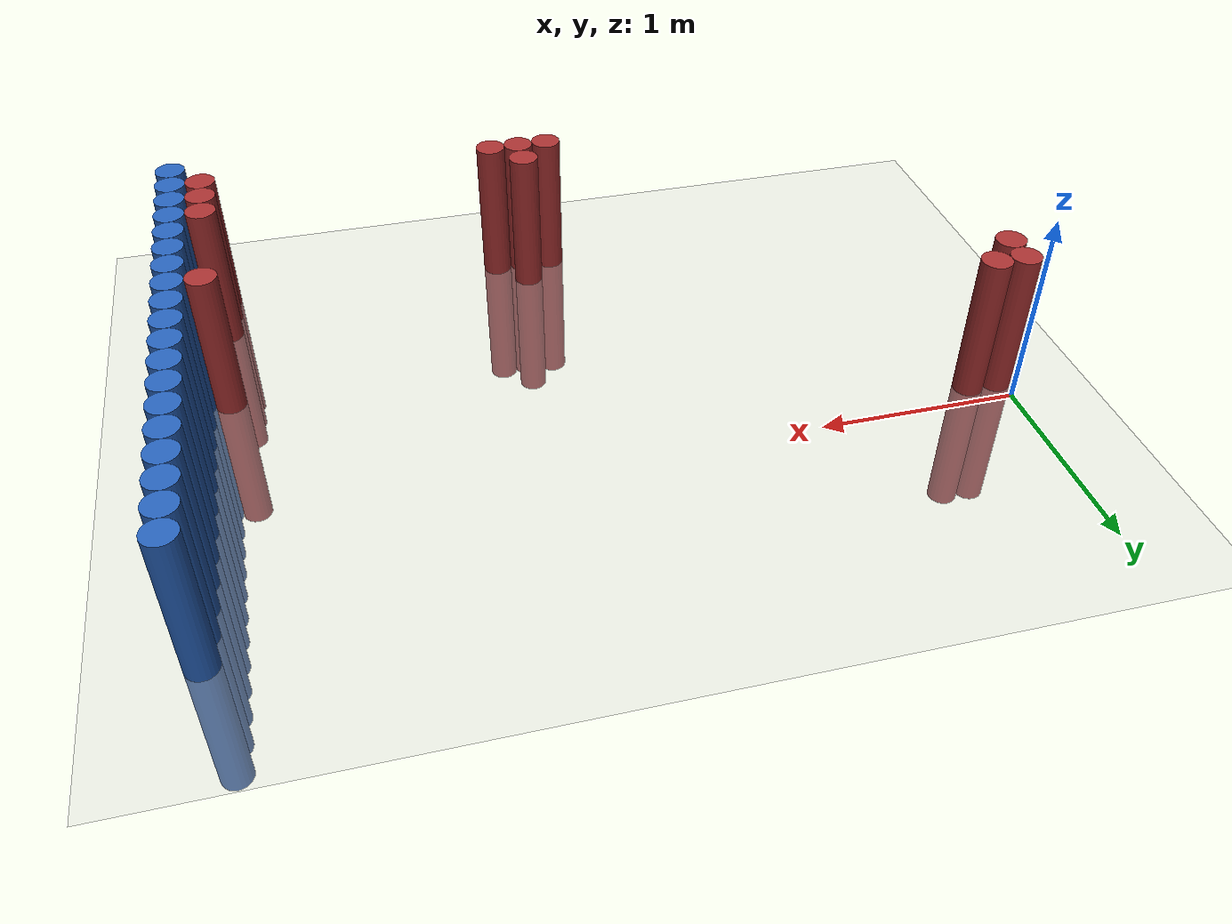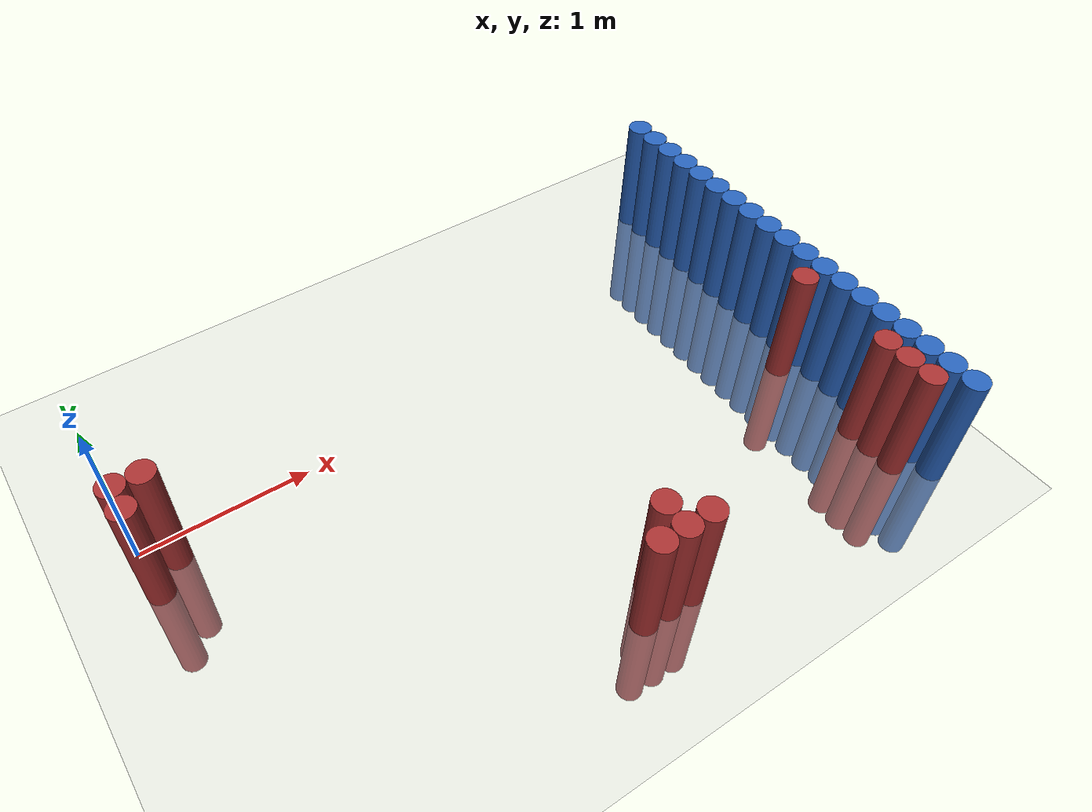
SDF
<sdf version="1.6">
 <world name="default">
  <model name="ground_plane">
   <static>1</static>
   <link name="link">
    <collision name="collision">
     <geometry><plane><normal>0 0 1</normal><size>100 100</size></plane></geometry>
     <surface><friction><ode><mu>100</mu><mu2>50</mu2></ode></friction></surface>
    </collision>
    <visual name="visual">
     <cast_shadows>0</cast_shadows>
     <geometry><plane><normal>0 0 1</normal><size>100 100</size></plane></geometry>
     <material>
      <script><uri>file://media/materials/scripts/gazebo.material</uri><name>Gazebo/Grey</name></script>
     </material>
    </visual>
   </link>
  </model>
  <model name="unit_cylinder_90">
   <static>1</static>
   <pose>3.925000 -1.775000 0.000000 0.000000 0.000000 0.000000</pose>
   <link name="link">
    <inertial>
     <mass>1</mass>
     <inertia><ixx>0.145833</ixx><ixy>0</ixy><ixz>0</ixz><iyy>0.145833</iyy><iyz>0</iyz><izz>0.125</izz></inertia>
    </inertial>
    <collision name="collision">
     <geometry><cylinder><radius>0.075000</radius><length>1.5</length></cylinder></geometry>
    </collision>
    <visual name="visual">
     <geometry><cylinder><radius>0.075000</radius><length>1.5</length></cylinder></geometry>
     <material>
      <ambient>0.152000 0.379000 0.720000 1</ambient>
      <diffuse>0.152000 0.379000 0.720000 1</diffuse>
     </material>
     <material>
      <script><name>Gazebo/Grey</name><uri>file://media/materials/scripts/gazebo.material</uri></script>
     </material>
    </visual>
   </link>
  </model>
  <model name="unit_cylinder_92">
   <static>1</static>
   <pose>3.925000 -1.625000 0.000000 0.000000 0.000000 0.000000</pose>
   <link name="link">
    <inertial>
     <mass>1</mass>
     <inertia><ixx>0.145833</ixx><ixy>0</ixy><ixz>0</ixz><iyy>0.145833</iyy><iyz>0</iyz><izz>0.125</izz></inertia>
    </inertial>
    <collision name="collision">
     <geometry><cylinder><radius>0.075000</radius><length>1.5</length></cylinder></geometry>
    </collision>
    <visual name="visual">
     <geometry><cylinder><radius>0.075000</radius><length>1.5</length></cylinder></geometry>
     <material>
      <ambient>0.152000 0.379000 0.720000 1</ambient>
      <diffuse>0.152000 0.379000 0.720000 1</diffuse>
     </material>
     <material>
      <script><name>Gazebo/Grey</name><uri>file://media/materials/scripts/gazebo.material</uri></script>
     </material>
    </visual>
   </link>
  </model>
  <model name="unit_cylinder_94">
   <static>1</static>
   <pose>3.925000 -1.475000 0.000000 0.000000 0.000000 0.000000</pose>
   <link name="link">
    <inertial>
     <mass>1</mass>
     <inertia><ixx>0.145833</ixx><ixy>0</ixy><ixz>0</ixz><iyy>0.145833</iyy><iyz>0</iyz><izz>0.125</izz></inertia>
    </inertial>
    <collision name="collision">
     <geometry><cylinder><radius>0.075000</radius><length>1.5</length></cylinder></geometry>
    </collision>
    <visual name="visual">
     <geometry><cylinder><radius>0.075000</radius><length>1.5</length></cylinder></geometry>
     <material>
      <ambient>0.152000 0.379000 0.720000 1</ambient>
      <diffuse>0.152000 0.379000 0.720000 1</diffuse>
     </material>
     <material>
      <script><name>Gazebo/Grey</name><uri>file://media/materials/scripts/gazebo.material</uri></script>
     </material>
    </visual>
   </link>
  </model>
  <model name="unit_cylinder_96">
   <static>1</static>
   <pose>3.925000 -1.325000 0.000000 0.000000 0.000000 0.000000</pose>
   <link name="link">
    <inertial>
     <mass>1</mass>
     <inertia><ixx>0.145833</ixx><ixy>0</ixy><ixz>0</ixz><iyy>0.145833</iyy><iyz>0</iyz><izz>0.125</izz></inertia>
    </inertial>
    <collision name="collision">
     <geometry><cylinder><radius>0.075000</radius><length>1.5</length></cylinder></geometry>
    </collision>
    <visual name="visual">
     <geometry><cylinder><radius>0.075000</radius><length>1.5</length></cylinder></geometry>
     <material>
      <ambient>0.152000 0.379000 0.720000 1</ambient>
      <diffuse>0.152000 0.379000 0.720000 1</diffuse>
     </material>
     <material>
      <script><name>Gazebo/Grey</name><uri>file://media/materials/scripts/gazebo.material</uri></script>
     </material>
    </visual>
   </link>
  </model>
  <model name="unit_cylinder_98">
   <static>1</static>
   <pose>3.925000 -1.175000 0.000000 0.000000 0.000000 0.000000</pose>
   <link name="link">
    <inertial>
     <mass>1</mass>
     <inertia><ixx>0.145833</ixx><ixy>0</ixy><ixz>0</ixz><iyy>0.145833</iyy><iyz>0</iyz><izz>0.125</izz></inertia>
    </inertial>
    <collision name="collision">
     <geometry><cylinder><radius>0.075000</radius><length>1.5</length></cylinder></geometry>
    </collision>
    <visual name="visual">
     <geometry><cylinder><radius>0.075000</radius><length>1.5</length></cylinder></geometry>
     <material>
      <ambient>0.152000 0.379000 0.720000 1</ambient>
      <diffuse>0.152000 0.379000 0.720000 1</diffuse>
     </material>
     <material>
      <script><name>Gazebo/Grey</name><uri>file://media/materials/scripts/gazebo.material</uri></script>
     </material>
    </visual>
   </link>
  </model>
  <model name="unit_cylinder_100">
   <static>1</static>
   <pose>3.925000 -1.025000 0.000000 0.000000 0.000000 0.000000</pose>
   <link name="link">
    <inertial>
     <mass>1</mass>
     <inertia><ixx>0.145833</ixx><ixy>0</ixy><ixz>0</ixz><iyy>0.145833</iyy><iyz>0</iyz><izz>0.125</izz></inertia>
    </inertial>
    <collision name="collision">
     <geometry><cylinder><radius>0.075000</radius><length>1.5</length></cylinder></geometry>
    </collision>
    <visual name="visual">
     <geometry><cylinder><radius>0.075000</radius><length>1.5</length></cylinder></geometry>
     <material>
      <ambient>0.152000 0.379000 0.720000 1</ambient>
      <diffuse>0.152000 0.379000 0.720000 1</diffuse>
     </material>
     <material>
      <script><name>Gazebo/Grey</name><uri>file://media/materials/scripts/gazebo.material</uri></script>
     </material>
    </visual>
   </link>
  </model>
  <model name="unit_cylinder_102">
   <static>1</static>
   <pose>3.925000 -0.875000 0.000000 0.000000 0.000000 0.000000</pose>
   <link name="link">
    <inertial>
     <mass>1</mass>
     <inertia><ixx>0.145833</ixx><ixy>0</ixy><ixz>0</ixz><iyy>0.145833</iyy><iyz>0</iyz><izz>0.125</izz></inertia>
    </inertial>
    <collision name="collision">
     <geometry><cylinder><radius>0.075000</radius><length>1.5</length></cylinder></geometry>
    </collision>
    <visual name="visual">
     <geometry><cylinder><radius>0.075000</radius><length>1.5</length></cylinder></geometry>
     <material>
      <ambient>0.152000 0.379000 0.720000 1</ambient>
      <diffuse>0.152000 0.379000 0.720000 1</diffuse>
     </material>
     <material>
      <script><name>Gazebo/Grey</name><uri>file://media/materials/scripts/gazebo.material</uri></script>
     </material>
    </visual>
   </link>
  </model>
  <model name="unit_cylinder_104">
   <static>1</static>
   <pose>3.925000 -0.725000 0.000000 0.000000 0.000000 0.000000</pose>
   <link name="link">
    <inertial>
     <mass>1</mass>
     <inertia><ixx>0.145833</ixx><ixy>0</ixy><ixz>0</ixz><iyy>0.145833</iyy><iyz>0</iyz><izz>0.125</izz></inertia>
    </inertial>
    <collision name="collision">
     <geometry><cylinder><radius>0.075000</radius><length>1.5</length></cylinder></geometry>
    </collision>
    <visual name="visual">
     <geometry><cylinder><radius>0.075000</radius><length>1.5</length></cylinder></geometry>
     <material>
      <ambient>0.152000 0.379000 0.720000 1</ambient>
      <diffuse>0.152000 0.379000 0.720000 1</diffuse>
     </material>
     <material>
      <script><name>Gazebo/Grey</name><uri>file://media/materials/scripts/gazebo.material</uri></script>
     </material>
    </visual>
   </link>
  </model>
  <model name="unit_cylinder_106">
   <static>1</static>
   <pose>3.925000 -0.575000 0.000000 0.000000 0.000000 0.000000</pose>
   <link name="link">
    <inertial>
     <mass>1</mass>
     <inertia><ixx>0.145833</ixx><ixy>0</ixy><ixz>0</ixz><iyy>0.145833</iyy><iyz>0</iyz><izz>0.125</izz></inertia>
    </inertial>
    <collision name="collision">
     <geometry><cylinder><radius>0.075000</radius><length>1.5</length></cylinder></geometry>
    </collision>
    <visual name="visual">
     <geometry><cylinder><radius>0.075000</radius><length>1.5</length></cylinder></geometry>
     <material>
      <ambient>0.152000 0.379000 0.720000 1</ambient>
      <diffuse>0.152000 0.379000 0.720000 1</diffuse>
     </material>
     <material>
      <script><name>Gazebo/Grey</name><uri>file://media/materials/scripts/gazebo.material</uri></script>
     </material>
    </visual>
   </link>
  </model>
  <model name="unit_cylinder_108">
   <static>1</static>
   <pose>3.925000 -0.425000 0.000000 0.000000 0.000000 0.000000</pose>
   <link name="link">
    <inertial>
     <mass>1</mass>
     <inertia><ixx>0.145833</ixx><ixy>0</ixy><ixz>0</ixz><iyy>0.145833</iyy><iyz>0</iyz><izz>0.125</izz></inertia>
    </inertial>
    <collision name="collision">
     <geometry><cylinder><radius>0.075000</radius><length>1.5</length></cylinder></geometry>
    </collision>
    <visual name="visual">
     <geometry><cylinder><radius>0.075000</radius><length>1.5</length></cylinder></geometry>
     <material>
      <ambient>0.152000 0.379000 0.720000 1</ambient>
      <diffuse>0.152000 0.379000 0.720000 1</diffuse>
     </material>
     <material>
      <script><name>Gazebo/Grey</name><uri>file://media/materials/scripts/gazebo.material</uri></script>
     </material>
    </visual>
   </link>
  </model>
  <model name="unit_cylinder_110">
   <static>1</static>
   <pose>3.925000 -0.275000 0.000000 0.000000 0.000000 0.000000</pose>
   <link name="link">
    <inertial>
     <mass>1</mass>
     <inertia><ixx>0.145833</ixx><ixy>0</ixy><ixz>0</ixz><iyy>0.145833</iyy><iyz>0</iyz><izz>0.125</izz></inertia>
    </inertial>
    <collision name="collision">
     <geometry><cylinder><radius>0.075000</radius><length>1.5</length></cylinder></geometry>
    </collision>
    <visual name="visual">
     <geometry><cylinder><radius>0.075000</radius><length>1.5</length></cylinder></geometry>
     <material>
      <ambient>0.152000 0.379000 0.720000 1</ambient>
      <diffuse>0.152000 0.379000 0.720000 1</diffuse>
     </material>
     <material>
      <script><name>Gazebo/Grey</name><uri>file://media/materials/scripts/gazebo.material</uri></script>
     </material>
    </visual>
   </link>
  </model>
  <model name="unit_cylinder_112">
   <static>1</static>
   <pose>3.925000 -0.125000 0.000000 0.000000 0.000000 0.000000</pose>
   <link name="link">
    <inertial>
     <mass>1</mass>
     <inertia><ixx>0.145833</ixx><ixy>0</ixy><ixz>0</ixz><iyy>0.145833</iyy><iyz>0</iyz><izz>0.125</izz></inertia>
    </inertial>
    <collision name="collision">
     <geometry><cylinder><radius>0.075000</radius><length>1.5</length></cylinder></geometry>
    </collision>
    <visual name="visual">
     <geometry><cylinder><radius>0.075000</radius><length>1.5</length></cylinder></geometry>
     <material>
      <ambient>0.152000 0.379000 0.720000 1</ambient>
      <diffuse>0.152000 0.379000 0.720000 1</diffuse>
     </material>
     <material>
      <script><name>Gazebo/Grey</name><uri>file://media/materials/scripts/gazebo.material</uri></script>
     </material>
    </visual>
   </link>
  </model>
  <model name="unit_cylinder_114">
   <static>1</static>
   <pose>3.925000 0.025000 0.000000 0.000000 0.000000 0.000000</pose>
   <link name="link">
    <inertial>
     <mass>1</mass>
     <inertia><ixx>0.145833</ixx><ixy>0</ixy><ixz>0</ixz><iyy>0.145833</iyy><iyz>0</iyz><izz>0.125</izz></inertia>
    </inertial>
    <collision name="collision">
     <geometry><cylinder><radius>0.075000</radius><length>1.5</length></cylinder></geometry>
    </collision>
    <visual name="visual">
     <geometry><cylinder><radius>0.075000</radius><length>1.5</length></cylinder></geometry>
     <material>
      <ambient>0.152000 0.379000 0.720000 1</ambient>
      <diffuse>0.152000 0.379000 0.720000 1</diffuse>
     </material>
     <material>
      <script><name>Gazebo/Grey</name><uri>file://media/materials/scripts/gazebo.material</uri></script>
     </material>
    </visual>
   </link>
  </model>
  <model name="unit_cylinder_116">
   <static>1</static>
   <pose>3.925000 0.175000 0.000000 0.000000 0.000000 0.000000</pose>
   <link name="link">
    <inertial>
     <mass>1</mass>
     <inertia><ixx>0.145833</ixx><ixy>0</ixy><ixz>0</ixz><iyy>0.145833</iyy><iyz>0</iyz><izz>0.125</izz></inertia>
    </inertial>
    <collision name="collision">
     <geometry><cylinder><radius>0.075000</radius><length>1.5</length></cylinder></geometry>
    </collision>
    <visual name="visual">
     <geometry><cylinder><radius>0.075000</radius><length>1.5</length></cylinder></geometry>
     <material>
      <ambient>0.152000 0.379000 0.720000 1</ambient>
      <diffuse>0.152000 0.379000 0.720000 1</diffuse>
     </material>
     <material>
      <script><name>Gazebo/Grey</name><uri>file://media/materials/scripts/gazebo.material</uri></script>
     </material>
    </visual>
   </link>
  </model>
  <model name="unit_cylinder_118">
   <static>1</static>
   <pose>3.925000 0.325000 0.000000 0.000000 0.000000 0.000000</pose>
   <link name="link">
    <inertial>
     <mass>1</mass>
     <inertia><ixx>0.145833</ixx><ixy>0</ixy><ixz>0</ixz><iyy>0.145833</iyy><iyz>0</iyz><izz>0.125</izz></inertia>
    </inertial>
    <collision name="collision">
     <geometry><cylinder><radius>0.075000</radius><length>1.5</length></cylinder></geometry>
    </collision>
    <visual name="visual">
     <geometry><cylinder><radius>0.075000</radius><length>1.5</length></cylinder></geometry>
     <material>
      <ambient>0.152000 0.379000 0.720000 1</ambient>
      <diffuse>0.152000 0.379000 0.720000 1</diffuse>
     </material>
     <material>
      <script><name>Gazebo/Grey</name><uri>file://media/materials/scripts/gazebo.material</uri></script>
     </material>
    </visual>
   </link>
  </model>
  <model name="unit_cylinder_120">
   <static>1</static>
   <pose>3.925000 0.475000 0.000000 0.000000 0.000000 0.000000</pose>
   <link name="link">
    <inertial>
     <mass>1</mass>
     <inertia><ixx>0.145833</ixx><ixy>0</ixy><ixz>0</ixz><iyy>0.145833</iyy><iyz>0</iyz><izz>0.125</izz></inertia>
    </inertial>
    <collision name="collision">
     <geometry><cylinder><radius>0.075000</radius><length>1.5</length></cylinder></geometry>
    </collision>
    <visual name="visual">
     <geometry><cylinder><radius>0.075000</radius><length>1.5</length></cylinder></geometry>
     <material>
      <ambient>0.152000 0.379000 0.720000 1</ambient>
      <diffuse>0.152000 0.379000 0.720000 1</diffuse>
     </material>
     <material>
      <script><name>Gazebo/Grey</name><uri>file://media/materials/scripts/gazebo.material</uri></script>
     </material>
    </visual>
   </link>
  </model>
  <model name="unit_cylinder_122">
   <static>1</static>
   <pose>3.925000 0.625000 0.000000 0.000000 0.000000 0.000000</pose>
   <link name="link">
    <inertial>
     <mass>1</mass>
     <inertia><ixx>0.145833</ixx><ixy>0</ixy><ixz>0</ixz><iyy>0.145833</iyy><iyz>0</iyz><izz>0.125</izz></inertia>
    </inertial>
    <collision name="collision">
     <geometry><cylinder><radius>0.075000</radius><length>1.5</length></cylinder></geometry>
    </collision>
    <visual name="visual">
     <geometry><cylinder><radius>0.075000</radius><length>1.5</length></cylinder></geometry>
     <material>
      <ambient>0.152000 0.379000 0.720000 1</ambient>
      <diffuse>0.152000 0.379000 0.720000 1</diffuse>
     </material>
     <material>
      <script><name>Gazebo/Grey</name><uri>file://media/materials/scripts/gazebo.material</uri></script>
     </material>
    </visual>
   </link>
  </model>
  <model name="unit_cylinder_124">
   <static>1</static>
   <pose>3.925000 0.775000 0.000000 0.000000 0.000000 0.000000</pose>
   <link name="link">
    <inertial>
     <mass>1</mass>
     <inertia><ixx>0.145833</ixx><ixy>0</ixy><ixz>0</ixz><iyy>0.145833</iyy><iyz>0</iyz><izz>0.125</izz></inertia>
    </inertial>
    <collision name="collision">
     <geometry><cylinder><radius>0.075000</radius><length>1.5</length></cylinder></geometry>
    </collision>
    <visual name="visual">
     <geometry><cylinder><radius>0.075000</radius><length>1.5</length></cylinder></geometry>
     <material>
      <ambient>0.152000 0.379000 0.720000 1</ambient>
      <diffuse>0.152000 0.379000 0.720000 1</diffuse>
     </material>
     <material>
      <script><name>Gazebo/Grey</name><uri>file://media/materials/scripts/gazebo.material</uri></script>
     </material>
    </visual>
   </link>
  </model>
  <model name="unit_cylinder_303">
   <static>1</static>
   <pose>0.025000 -0.275000 0.000000 0.000000 0.000000 0.000000</pose>
   <link name="link">
    <inertial>
     <mass>1</mass>
     <inertia><ixx>0.145833</ixx><ixy>0</ixy><ixz>0</ixz><iyy>0.145833</iyy><iyz>0</iyz><izz>0.125</izz></inertia>
    </inertial>
    <collision name="collision">
     <geometry><cylinder><radius>0.075000</radius><length>1.5</length></cylinder></geometry>
    </collision>
    <visual name="visual">
     <geometry><cylinder><radius>0.075000</radius><length>1.5</length></cylinder></geometry>
     <material>
      <ambient>0.648000 0.192000 0.192000 1</ambient>
      <diffuse>0.648000 0.192000 0.192000 1</diffuse>
     </material>
     <material>
      <script><name>Gazebo/Grey</name><uri>file://media/materials/scripts/gazebo.material</uri></script>
     </material>
    </visual>
   </link>
  </model>
  <model name="unit_cylinder_304">
   <static>1</static>
   <pose>0.025000 -0.125000 0.000000 0.000000 0.000000 0.000000</pose>
   <link name="link">
    <inertial>
     <mass>1</mass>
     <inertia><ixx>0.145833</ixx><ixy>0</ixy><ixz>0</ixz><iyy>0.145833</iyy><iyz>0</iyz><izz>0.125</izz></inertia>
    </inertial>
    <collision name="collision">
     <geometry><cylinder><radius>0.075000</radius><length>1.5</length></cylinder></geometry>
    </collision>
    <visual name="visual">
     <geometry><cylinder><radius>0.075000</radius><length>1.5</length></cylinder></geometry>
     <material>
      <ambient>0.648000 0.192000 0.192000 1</ambient>
      <diffuse>0.648000 0.192000 0.192000 1</diffuse>
     </material>
     <material>
      <script><name>Gazebo/Grey</name><uri>file://media/materials/scripts/gazebo.material</uri></script>
     </material>
    </visual>
   </link>
  </model>
  <model name="unit_cylinder_305">
   <static>1</static>
   <pose>0.175000 -0.125000 0.000000 0.000000 0.000000 0.000000</pose>
   <link name="link">
    <inertial>
     <mass>1</mass>
     <inertia><ixx>0.145833</ixx><ixy>0</ixy><ixz>0</ixz><iyy>0.145833</iyy><iyz>0</iyz><izz>0.125</izz></inertia>
    </inertial>
    <collision name="collision">
     <geometry><cylinder><radius>0.075000</radius><length>1.5</length></cylinder></geometry>
    </collision>
    <visual name="visual">
     <geometry><cylinder><radius>0.075000</radius><length>1.5</length></cylinder></geometry>
     <material>
      <ambient>0.648000 0.192000 0.192000 1</ambient>
      <diffuse>0.648000 0.192000 0.192000 1</diffuse>
     </material>
     <material>
      <script><name>Gazebo/Grey</name><uri>file://media/materials/scripts/gazebo.material</uri></script>
     </material>
    </visual>
   </link>
  </model>
  <model name="unit_cylinder_322">
   <static>1</static>
   <pose>1.975000 -1.775000 0.000000 0.000000 0.000000 0.000000</pose>
   <link name="link">
    <inertial>
     <mass>1</mass>
     <inertia><ixx>0.145833</ixx><ixy>0</ixy><ixz>0</ixz><iyy>0.145833</iyy><iyz>0</iyz><izz>0.125</izz></inertia>
    </inertial>
    <collision name="collision">
     <geometry><cylinder><radius>0.075000</radius><length>1.5</length></cylinder></geometry>
    </collision>
    <visual name="visual">
     <geometry><cylinder><radius>0.075000</radius><length>1.5</length></cylinder></geometry>
     <material>
      <ambient>0.648000 0.192000 0.192000 1</ambient>
      <diffuse>0.648000 0.192000 0.192000 1</diffuse>
     </material>
     <material>
      <script><name>Gazebo/Grey</name><uri>file://media/materials/scripts/gazebo.material</uri></script>
     </material>
    </visual>
   </link>
  </model>
  <model name="unit_cylinder_323">
   <static>1</static>
   <pose>2.125000 -1.775000 0.000000 0.000000 0.000000 0.000000</pose>
   <link name="link">
    <inertial>
     <mass>1</mass>
     <inertia><ixx>0.145833</ixx><ixy>0</ixy><ixz>0</ixz><iyy>0.145833</iyy><iyz>0</iyz><izz>0.125</izz></inertia>
    </inertial>
    <collision name="collision">
     <geometry><cylinder><radius>0.075000</radius><length>1.5</length></cylinder></geometry>
    </collision>
    <visual name="visual">
     <geometry><cylinder><radius>0.075000</radius><length>1.5</length></cylinder></geometry>
     <material>
      <ambient>0.648000 0.192000 0.192000 1</ambient>
      <diffuse>0.648000 0.192000 0.192000 1</diffuse>
     </material>
     <material>
      <script><name>Gazebo/Grey</name><uri>file://media/materials/scripts/gazebo.material</uri></script>
     </material>
    </visual>
   </link>
  </model>
  <model name="unit_cylinder_324">
   <static>1</static>
   <pose>2.125000 -1.625000 0.000000 0.000000 0.000000 0.000000</pose>
   <link name="link">
    <inertial>
     <mass>1</mass>
     <inertia><ixx>0.145833</ixx><ixy>0</ixy><ixz>0</ixz><iyy>0.145833</iyy><iyz>0</iyz><izz>0.125</izz></inertia>
    </inertial>
    <collision name="collision">
     <geometry><cylinder><radius>0.075000</radius><length>1.5</length></cylinder></geometry>
    </collision>
    <visual name="visual">
     <geometry><cylinder><radius>0.075000</radius><length>1.5</length></cylinder></geometry>
     <material>
      <ambient>0.648000 0.192000 0.192000 1</ambient>
      <diffuse>0.648000 0.192000 0.192000 1</diffuse>
     </material>
     <material>
      <script><name>Gazebo/Grey</name><uri>file://media/materials/scripts/gazebo.material</uri></script>
     </material>
    </visual>
   </link>
  </model>
  <model name="unit_cylinder_325">
   <static>1</static>
   <pose>2.275000 -1.775000 0.000000 0.000000 0.000000 0.000000</pose>
   <link name="link">
    <inertial>
     <mass>1</mass>
     <inertia><ixx>0.145833</ixx><ixy>0</ixy><ixz>0</ixz><iyy>0.145833</iyy><iyz>0</iyz><izz>0.125</izz></inertia>
    </inertial>
    <collision name="collision">
     <geometry><cylinder><radius>0.075000</radius><length>1.5</length></cylinder></geometry>
    </collision>
    <visual name="visual">
     <geometry><cylinder><radius>0.075000</radius><length>1.5</length></cylinder></geometry>
     <material>
      <ambient>0.648000 0.192000 0.192000 1</ambient>
      <diffuse>0.648000 0.192000 0.192000 1</diffuse>
     </material>
     <material>
      <script><name>Gazebo/Grey</name><uri>file://media/materials/scripts/gazebo.material</uri></script>
     </material>
    </visual>
   </link>
  </model>
  <model name="unit_cylinder_327">
   <static>1</static>
   <pose>3.775000 -1.775000 0.000000 0.000000 0.000000 0.000000</pose>
   <link name="link">
    <inertial>
     <mass>1</mass>
     <inertia><ixx>0.145833</ixx><ixy>0</ixy><ixz>0</ixz><iyy>0.145833</iyy><iyz>0</iyz><izz>0.125</izz></inertia>
    </inertial>
    <collision name="collision">
     <geometry><cylinder><radius>0.075000</radius><length>1.5</length></cylinder></geometry>
    </collision>
    <visual name="visual">
     <geometry><cylinder><radius>0.075000</radius><length>1.5</length></cylinder></geometry>
     <material>
      <ambient>0.648000 0.192000 0.192000 1</ambient>
      <diffuse>0.648000 0.192000 0.192000 1</diffuse>
     </material>
     <material>
      <script><name>Gazebo/Grey</name><uri>file://media/materials/scripts/gazebo.material</uri></script>
     </material>
    </visual>
   </link>
  </model>
  <model name="unit_cylinder_328">
   <static>1</static>
   <pose>3.775000 -1.625000 0.000000 0.000000 0.000000 0.000000</pose>
   <link name="link">
    <inertial>
     <mass>1</mass>
     <inertia><ixx>0.145833</ixx><ixy>0</ixy><ixz>0</ixz><iyy>0.145833</iyy><iyz>0</iyz><izz>0.125</izz></inertia>
    </inertial>
    <collision name="collision">
     <geometry><cylinder><radius>0.075000</radius><length>1.5</length></cylinder></geometry>
    </collision>
    <visual name="visual">
     <geometry><cylinder><radius>0.075000</radius><length>1.5</length></cylinder></geometry>
     <material>
      <ambient>0.648000 0.192000 0.192000 1</ambient>
      <diffuse>0.648000 0.192000 0.192000 1</diffuse>
     </material>
     <material>
      <script><name>Gazebo/Grey</name><uri>file://media/materials/scripts/gazebo.material</uri></script>
     </material>
    </visual>
   </link>
  </model>
  <model name="unit_cylinder_329">
   <static>1</static>
   <pose>3.775000 -1.475000 0.000000 0.000000 0.000000 0.000000</pose>
   <link name="link">
    <inertial>
     <mass>1</mass>
     <inertia><ixx>0.145833</ixx><ixy>0</ixy><ixz>0</ixz><iyy>0.145833</iyy><iyz>0</iyz><izz>0.125</izz></inertia>
    </inertial>
    <collision name="collision">
     <geometry><cylinder><radius>0.075000</radius><length>1.5</length></cylinder></geometry>
    </collision>
    <visual name="visual">
     <geometry><cylinder><radius>0.075000</radius><length>1.5</length></cylinder></geometry>
     <material>
      <ambient>0.648000 0.192000 0.192000 1</ambient>
      <diffuse>0.648000 0.192000 0.192000 1</diffuse>
     </material>
     <material>
      <script><name>Gazebo/Grey</name><uri>file://media/materials/scripts/gazebo.material</uri></script>
     </material>
    </visual>
   </link>
  </model>
  <model name="unit_cylinder_330">
   <static>1</static>
   <pose>3.775000 -0.875000 0.000000 0.000000 0.000000 0.000000</pose>
   <link name="link">
    <inertial>
     <mass>1</mass>
     <inertia><ixx>0.145833</ixx><ixy>0</ixy><ixz>0</ixz><iyy>0.145833</iyy><iyz>0</iyz><izz>0.125</izz></inertia>
    </inertial>
    <collision name="collision">
     <geometry><cylinder><radius>0.075000</radius><length>1.5</length></cylinder></geometry>
    </collision>
    <visual name="visual">
     <geometry><cylinder><radius>0.075000</radius><length>1.5</length></cylinder></geometry>
     <material>
      <ambient>0.648000 0.192000 0.192000 1</ambient>
      <diffuse>0.648000 0.192000 0.192000 1</diffuse>
     </material>
     <material>
      <script><name>Gazebo/Grey</name><uri>file://media/materials/scripts/gazebo.material</uri></script>
     </material>
    </visual>
   </link>
  </model>
  <model name="unit_cylinder_333">
   <static>1</static>
   <pose>3.925000 -1.925000 0.000000 0.000000 0.000000 0.000000</pose>
   <link name="link">
    <inertial>
     <mass>1</mass>
     <inertia><ixx>0.145833</ixx><ixy>0</ixy><ixz>0</ixz><iyy>0.145833</iyy><iyz>0</iyz><izz>0.125</izz></inertia>
    </inertial>
    <collision name="collision">
     <geometry><cylinder><radius>0.075000</radius><length>1.5</length></cylinder></geometry>
    </collision>
    <visual name="visual">
     <geometry><cylinder><radius>0.075000</radius><length>1.5</length></cylinder></geometry>
     <material>
      <ambient>0.152000 0.379000 0.720000 1</ambient>
      <diffuse>0.152000 0.379000 0.720000 1</diffuse>
     </material>
     <material>
      <script><name>Gazebo/Grey</name><uri>file://media/materials/scripts/gazebo.material</uri></script>
     </material>
    </visual>
   </link>
  </model>
  <model name="unit_cylinder_334">
   <static>1</static>
   <pose>3.925000 -1.775000 0.000000 0.000000 0.000000 0.000000</pose>
   <link name="link">
    <inertial>
     <mass>1</mass>
     <inertia><ixx>0.145833</ixx><ixy>0</ixy><ixz>0</ixz><iyy>0.145833</iyy><iyz>0</iyz><izz>0.125</izz></inertia>
    </inertial>
    <collision name="collision">
     <geometry><cylinder><radius>0.075000</radius><length>1.5</length></cylinder></geometry>
    </collision>
    <visual name="visual">
     <geometry><cylinder><radius>0.075000</radius><length>1.5</length></cylinder></geometry>
     <material>
      <ambient>0.152000 0.379000 0.720000 1</ambient>
      <diffuse>0.152000 0.379000 0.720000 1</diffuse>
     </material>
     <material>
      <script><name>Gazebo/Grey</name><uri>file://media/materials/scripts/gazebo.material</uri></script>
     </material>
    </visual>
   </link>
  </model>
  <model name="unit_cylinder_335">
   <static>1</static>
   <pose>3.925000 -1.625000 0.000000 0.000000 0.000000 0.000000</pose>
   <link name="link">
    <inertial>
     <mass>1</mass>
     <inertia><ixx>0.145833</ixx><ixy>0</ixy><ixz>0</ixz><iyy>0.145833</iyy><iyz>0</iyz><izz>0.125</izz></inertia>
    </inertial>
    <collision name="collision">
     <geometry><cylinder><radius>0.075000</radius><length>1.5</length></cylinder></geometry>
    </collision>
    <visual name="visual">
     <geometry><cylinder><radius>0.075000</radius><length>1.5</length></cylinder></geometry>
     <material>
      <ambient>0.152000 0.379000 0.720000 1</ambient>
      <diffuse>0.152000 0.379000 0.720000 1</diffuse>
     </material>
     <material>
      <script><name>Gazebo/Grey</name><uri>file://media/materials/scripts/gazebo.material</uri></script>
     </material>
    </visual>
   </link>
  </model>
  <model name="unit_cylinder_336">
   <static>1</static>
   <pose>3.925000 -1.475000 0.000000 0.000000 0.000000 0.000000</pose>
   <link name="link">
    <inertial>
     <mass>1</mass>
     <inertia><ixx>0.145833</ixx><ixy>0</ixy><ixz>0</ixz><iyy>0.145833</iyy><iyz>0</iyz><izz>0.125</izz></inertia>
    </inertial>
    <collision name="collision">
     <geometry><cylinder><radius>0.075000</radius><length>1.5</length></cylinder></geometry>
    </collision>
    <visual name="visual">
     <geometry><cylinder><radius>0.075000</radius><length>1.5</length></cylinder></geometry>
     <material>
      <ambient>0.152000 0.379000 0.720000 1</ambient>
      <diffuse>0.152000 0.379000 0.720000 1</diffuse>
     </material>
     <material>
      <script><name>Gazebo/Grey</name><uri>file://media/materials/scripts/gazebo.material</uri></script>
     </material>
    </visual>
   </link>
  </model>
  <model name="unit_cylinder_337">
   <static>1</static>
   <pose>3.925000 -1.325000 0.000000 0.000000 0.000000 0.000000</pose>
   <link name="link">
    <inertial>
     <mass>1</mass>
     <inertia><ixx>0.145833</ixx><ixy>0</ixy><ixz>0</ixz><iyy>0.145833</iyy><iyz>0</iyz><izz>0.125</izz></inertia>
    </inertial>
    <collision name="collision">
     <geometry><cylinder><radius>0.075000</radius><length>1.5</length></cylinder></geometry>
    </collision>
    <visual name="visual">
     <geometry><cylinder><radius>0.075000</radius><length>1.5</length></cylinder></geometry>
     <material>
      <ambient>0.152000 0.379000 0.720000 1</ambient>
      <diffuse>0.152000 0.379000 0.720000 1</diffuse>
     </material>
     <material>
      <script><name>Gazebo/Grey</name><uri>file://media/materials/scripts/gazebo.material</uri></script>
     </material>
    </visual>
   </link>
  </model>
  <model name="unit_cylinder_338">
   <static>1</static>
   <pose>3.925000 -1.175000 0.000000 0.000000 0.000000 0.000000</pose>
   <link name="link">
    <inertial>
     <mass>1</mass>
     <inertia><ixx>0.145833</ixx><ixy>0</ixy><ixz>0</ixz><iyy>0.145833</iyy><iyz>0</iyz><izz>0.125</izz></inertia>
    </inertial>
    <collision name="collision">
     <geometry><cylinder><radius>0.075000</radius><length>1.5</length></cylinder></geometry>
    </collision>
    <visual name="visual">
     <geometry><cylinder><radius>0.075000</radius><length>1.5</length></cylinder></geometry>
     <material>
      <ambient>0.152000 0.379000 0.720000 1</ambient>
      <diffuse>0.152000 0.379000 0.720000 1</diffuse>
     </material>
     <material>
      <script><name>Gazebo/Grey</name><uri>file://media/materials/scripts/gazebo.material</uri></script>
     </material>
    </visual>
   </link>
  </model>
  <model name="unit_cylinder_339">
   <static>1</static>
   <pose>3.925000 -1.025000 0.000000 0.000000 0.000000 0.000000</pose>
   <link name="link">
    <inertial>
     <mass>1</mass>
     <inertia><ixx>0.145833</ixx><ixy>0</ixy><ixz>0</ixz><iyy>0.145833</iyy><iyz>0</iyz><izz>0.125</izz></inertia>
    </inertial>
    <collision name="collision">
     <geometry><cylinder><radius>0.075000</radius><length>1.5</length></cylinder></geometry>
    </collision>
    <visual name="visual">
     <geometry><cylinder><radius>0.075000</radius><length>1.5</length></cylinder></geometry>
     <material>
      <ambient>0.152000 0.379000 0.720000 1</ambient>
      <diffuse>0.152000 0.379000 0.720000 1</diffuse>
     </material>
     <material>
      <script><name>Gazebo/Grey</name><uri>file://media/materials/scripts/gazebo.material</uri></script>
     </material>
    </visual>
   </link>
  </model>
  <model name="unit_cylinder_340">
   <static>1</static>
   <pose>3.925000 -0.875000 0.000000 0.000000 0.000000 0.000000</pose>
   <link name="link">
    <inertial>
     <mass>1</mass>
     <inertia><ixx>0.145833</ixx><ixy>0</ixy><ixz>0</ixz><iyy>0.145833</iyy><iyz>0</iyz><izz>0.125</izz></inertia>
    </inertial>
    <collision name="collision">
     <geometry><cylinder><radius>0.075000</radius><length>1.5</length></cylinder></geometry>
    </collision>
    <visual name="visual">
     <geometry><cylinder><radius>0.075000</radius><length>1.5</length></cylinder></geometry>
     <material>
      <ambient>0.152000 0.379000 0.720000 1</ambient>
      <diffuse>0.152000 0.379000 0.720000 1</diffuse>
     </material>
     <material>
      <script><name>Gazebo/Grey</name><uri>file://media/materials/scripts/gazebo.material</uri></script>
     </material>
    </visual>
   </link>
  </model>
  <model name="unit_cylinder_341">
   <static>1</static>
   <pose>3.925000 -0.725000 0.000000 0.000000 0.000000 0.000000</pose>
   <link name="link">
    <inertial>
     <mass>1</mass>
     <inertia><ixx>0.145833</ixx><ixy>0</ixy><ixz>0</ixz><iyy>0.145833</iyy><iyz>0</iyz><izz>0.125</izz></inertia>
    </inertial>
    <collision name="collision">
     <geometry><cylinder><radius>0.075000</radius><length>1.5</length></cylinder></geometry>
    </collision>
    <visual name="visual">
     <geometry><cylinder><radius>0.075000</radius><length>1.5</length></cylinder></geometry>
     <material>
      <ambient>0.152000 0.379000 0.720000 1</ambient>
      <diffuse>0.152000 0.379000 0.720000 1</diffuse>
     </material>
     <material>
      <script><name>Gazebo/Grey</name><uri>file://media/materials/scripts/gazebo.material</uri></script>
     </material>
    </visual>
   </link>
  </model>
  <model name="unit_cylinder_342">
   <static>1</static>
   <pose>3.925000 -0.575000 0.000000 0.000000 0.000000 0.000000</pose>
   <link name="link">
    <inertial>
     <mass>1</mass>
     <inertia><ixx>0.145833</ixx><ixy>0</ixy><ixz>0</ixz><iyy>0.145833</iyy><iyz>0</iyz><izz>0.125</izz></inertia>
    </inertial>
    <collision name="collision">
     <geometry><cylinder><radius>0.075000</radius><length>1.5</length></cylinder></geometry>
    </collision>
    <visual name="visual">
     <geometry><cylinder><radius>0.075000</radius><length>1.5</length></cylinder></geometry>
     <material>
      <ambient>0.152000 0.379000 0.720000 1</ambient>
      <diffuse>0.152000 0.379000 0.720000 1</diffuse>
     </material>
     <material>
      <script><name>Gazebo/Grey</name><uri>file://media/materials/scripts/gazebo.material</uri></script>
     </material>
    </visual>
   </link>
  </model>
  <model name="unit_cylinder_343">
   <static>1</static>
   <pose>3.925000 -0.425000 0.000000 0.000000 0.000000 0.000000</pose>
   <link name="link">
    <inertial>
     <mass>1</mass>
     <inertia><ixx>0.145833</ixx><ixy>0</ixy><ixz>0</ixz><iyy>0.145833</iyy><iyz>0</iyz><izz>0.125</izz></inertia>
    </inertial>
    <collision name="collision">
     <geometry><cylinder><radius>0.075000</radius><length>1.5</length></cylinder></geometry>
    </collision>
    <visual name="visual">
     <geometry><cylinder><radius>0.075000</radius><length>1.5</length></cylinder></geometry>
     <material>
      <ambient>0.152000 0.379000 0.720000 1</ambient>
      <diffuse>0.152000 0.379000 0.720000 1</diffuse>
     </material>
     <material>
      <script><name>Gazebo/Grey</name><uri>file://media/materials/scripts/gazebo.material</uri></script>
     </material>
    </visual>
   </link>
  </model>
  <model name="unit_cylinder_344">
   <static>1</static>
   <pose>3.925000 -0.275000 0.000000 0.000000 0.000000 0.000000</pose>
   <link name="link">
    <inertial>
     <mass>1</mass>
     <inertia><ixx>0.145833</ixx><ixy>0</ixy><ixz>0</ixz><iyy>0.145833</iyy><iyz>0</iyz><izz>0.125</izz></inertia>
    </inertial>
    <collision name="collision">
     <geometry><cylinder><radius>0.075000</radius><length>1.5</length></cylinder></geometry>
    </collision>
    <visual name="visual">
     <geometry><cylinder><radius>0.075000</radius><length>1.5</length></cylinder></geometry>
     <material>
      <ambient>0.152000 0.379000 0.720000 1</ambient>
      <diffuse>0.152000 0.379000 0.720000 1</diffuse>
     </material>
     <material>
      <script><name>Gazebo/Grey</name><uri>file://media/materials/scripts/gazebo.material</uri></script>
     </material>
    </visual>
   </link>
  </model>
  <model name="unit_cylinder_345">
   <static>1</static>
   <pose>3.925000 -0.125000 0.000000 0.000000 0.000000 0.000000</pose>
   <link name="link">
    <inertial>
     <mass>1</mass>
     <inertia><ixx>0.145833</ixx><ixy>0</ixy><ixz>0</ixz><iyy>0.145833</iyy><iyz>0</iyz><izz>0.125</izz></inertia>
    </inertial>
    <collision name="collision">
     <geometry><cylinder><radius>0.075000</radius><length>1.5</length></cylinder></geometry>
    </collision>
    <visual name="visual">
     <geometry><cylinder><radius>0.075000</radius><length>1.5</length></cylinder></geometry>
     <material>
      <ambient>0.152000 0.379000 0.720000 1</ambient>
      <diffuse>0.152000 0.379000 0.720000 1</diffuse>
     </material>
     <material>
      <script><name>Gazebo/Grey</name><uri>file://media/materials/scripts/gazebo.material</uri></script>
     </material>
    </visual>
   </link>
  </model>
  <model name="unit_cylinder_346">
   <static>1</static>
   <pose>3.925000 0.025000 0.000000 0.000000 0.000000 0.000000</pose>
   <link name="link">
    <inertial>
     <mass>1</mass>
     <inertia><ixx>0.145833</ixx><ixy>0</ixy><ixz>0</ixz><iyy>0.145833</iyy><iyz>0</iyz><izz>0.125</izz></inertia>
    </inertial>
    <collision name="collision">
     <geometry><cylinder><radius>0.075000</radius><length>1.5</length></cylinder></geometry>
    </collision>
    <visual name="visual">
     <geometry><cylinder><radius>0.075000</radius><length>1.5</length></cylinder></geometry>
     <material>
      <ambient>0.152000 0.379000 0.720000 1</ambient>
      <diffuse>0.152000 0.379000 0.720000 1</diffuse>
     </material>
     <material>
      <script><name>Gazebo/Grey</name><uri>file://media/materials/scripts/gazebo.material</uri></script>
     </material>
    </visual>
   </link>
  </model>
  <model name="unit_cylinder_347">
   <static>1</static>
   <pose>3.925000 0.175000 0.000000 0.000000 0.000000 0.000000</pose>
   <link name="link">
    <inertial>
     <mass>1</mass>
     <inertia><ixx>0.145833</ixx><ixy>0</ixy><ixz>0</ixz><iyy>0.145833</iyy><iyz>0</iyz><izz>0.125</izz></inertia>
    </inertial>
    <collision name="collision">
     <geometry><cylinder><radius>0.075000</radius><length>1.5</length></cylinder></geometry>
    </collision>
    <visual name="visual">
     <geometry><cylinder><radius>0.075000</radius><length>1.5</length></cylinder></geometry>
     <material>
      <ambient>0.152000 0.379000 0.720000 1</ambient>
      <diffuse>0.152000 0.379000 0.720000 1</diffuse>
     </material>
     <material>
      <script><name>Gazebo/Grey</name><uri>file://media/materials/scripts/gazebo.material</uri></script>
     </material>
    </visual>
   </link>
  </model>
  <model name="unit_cylinder_348">
   <static>1</static>
   <pose>3.925000 0.325000 0.000000 0.000000 0.000000 0.000000</pose>
   <link name="link">
    <inertial>
     <mass>1</mass>
     <inertia><ixx>0.145833</ixx><ixy>0</ixy><ixz>0</ixz><iyy>0.145833</iyy><iyz>0</iyz><izz>0.125</izz></inertia>
    </inertial>
    <collision name="collision">
     <geometry><cylinder><radius>0.075000</radius><length>1.5</length></cylinder></geometry>
    </collision>
    <visual name="visual">
     <geometry><cylinder><radius>0.075000</radius><length>1.5</length></cylinder></geometry>
     <material>
      <ambient>0.152000 0.379000 0.720000 1</ambient>
      <diffuse>0.152000 0.379000 0.720000 1</diffuse>
     </material>
     <material>
      <script><name>Gazebo/Grey</name><uri>file://media/materials/scripts/gazebo.material</uri></script>
     </material>
    </visual>
   </link>
  </model>
  <model name="unit_cylinder_349">
   <static>1</static>
   <pose>3.925000 0.475000 0.000000 0.000000 0.000000 0.000000</pose>
   <link name="link">
    <inertial>
     <mass>1</mass>
     <inertia><ixx>0.145833</ixx><ixy>0</ixy><ixz>0</ixz><iyy>0.145833</iyy><iyz>0</iyz><izz>0.125</izz></inertia>
    </inertial>
    <collision name="collision">
     <geometry><cylinder><radius>0.075000</radius><length>1.5</length></cylinder></geometry>
    </collision>
    <visual name="visual">
     <geometry><cylinder><radius>0.075000</radius><length>1.5</length></cylinder></geometry>
     <material>
      <ambient>0.152000 0.379000 0.720000 1</ambient>
      <diffuse>0.152000 0.379000 0.720000 1</diffuse>
     </material>
     <material>
      <script><name>Gazebo/Grey</name><uri>file://media/materials/scripts/gazebo.material</uri></script>
     </material>
    </visual>
   </link>
  </model>
  <model name="unit_cylinder_350">
   <static>1</static>
   <pose>3.925000 0.625000 0.000000 0.000000 0.000000 0.000000</pose>
   <link name="link">
    <inertial>
     <mass>1</mass>
     <inertia><ixx>0.145833</ixx><ixy>0</ixy><ixz>0</ixz><iyy>0.145833</iyy><iyz>0</iyz><izz>0.125</izz></inertia>
    </inertial>
    <collision name="collision">
     <geometry><cylinder><radius>0.075000</radius><length>1.5</length></cylinder></geometry>
    </collision>
    <visual name="visual">
     <geometry><cylinder><radius>0.075000</radius><length>1.5</length></cylinder></geometry>
     <material>
      <ambient>0.152000 0.379000 0.720000 1</ambient>
      <diffuse>0.152000 0.379000 0.720000 1</diffuse>
     </material>
     <material>
      <script><name>Gazebo/Grey</name><uri>file://media/materials/scripts/gazebo.material</uri></script>
     </material>
    </visual>
   </link>
  </model>
  <model name="unit_cylinder_351">
   <static>1</static>
   <pose>3.925000 0.775000 0.000000 0.000000 0.000000 0.000000</pose>
   <link name="link">
    <inertial>
     <mass>1</mass>
     <inertia><ixx>0.145833</ixx><ixy>0</ixy><ixz>0</ixz><iyy>0.145833</iyy><iyz>0</iyz><izz>0.125</izz></inertia>
    </inertial>
    <collision name="collision">
     <geometry><cylinder><radius>0.075000</radius><length>1.5</length></cylinder></geometry>
    </collision>
    <visual name="visual">
     <geometry><cylinder><radius>0.075000</radius><length>1.5</length></cylinder></geometry>
     <material>
      <ambient>0.152000 0.379000 0.720000 1</ambient>
      <diffuse>0.152000 0.379000 0.720000 1</diffuse>
     </material>
     <material>
      <script><name>Gazebo/Grey</name><uri>file://media/materials/scripts/gazebo.material</uri></script>
     </material>
    </visual>
   </link>
  </model>
 </world>
</sdf>
